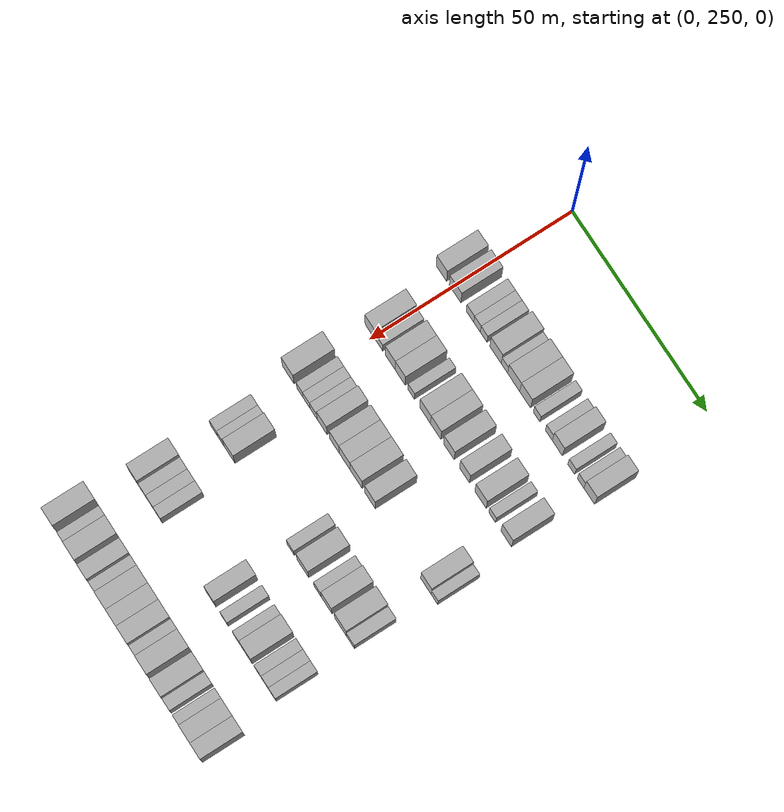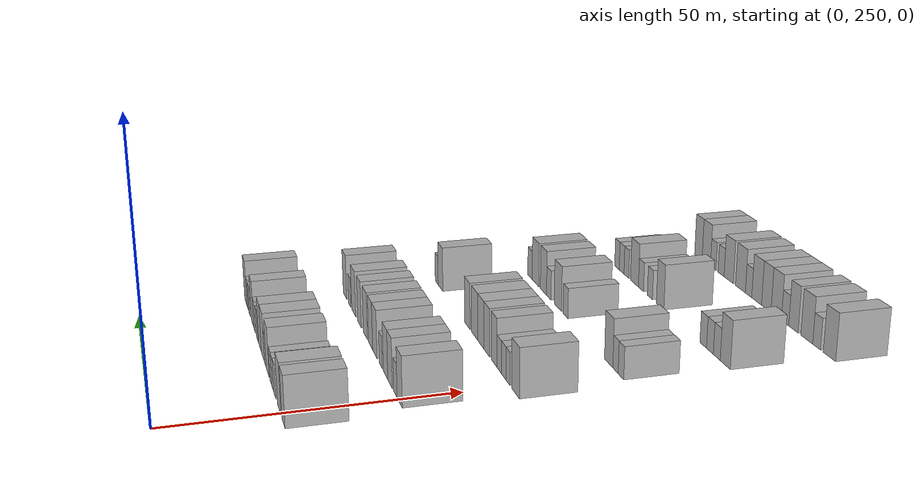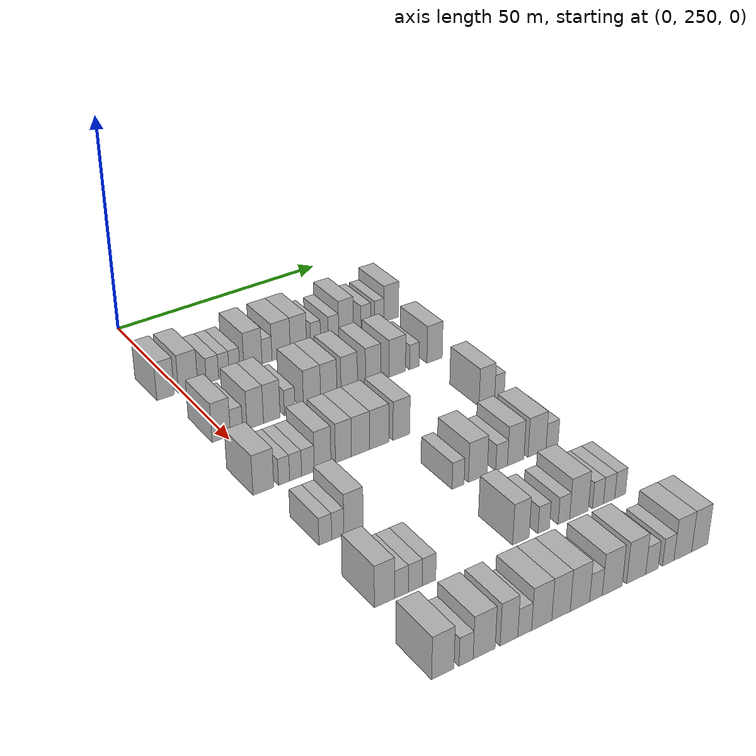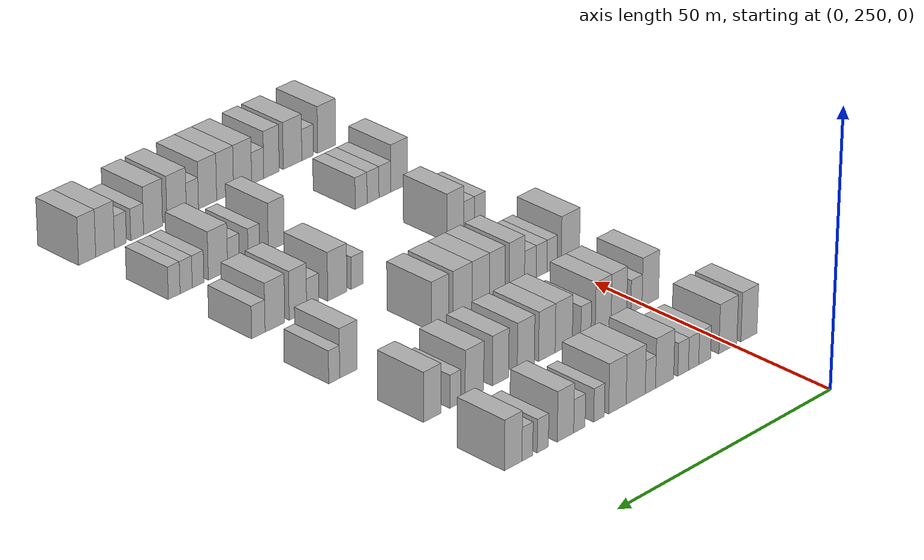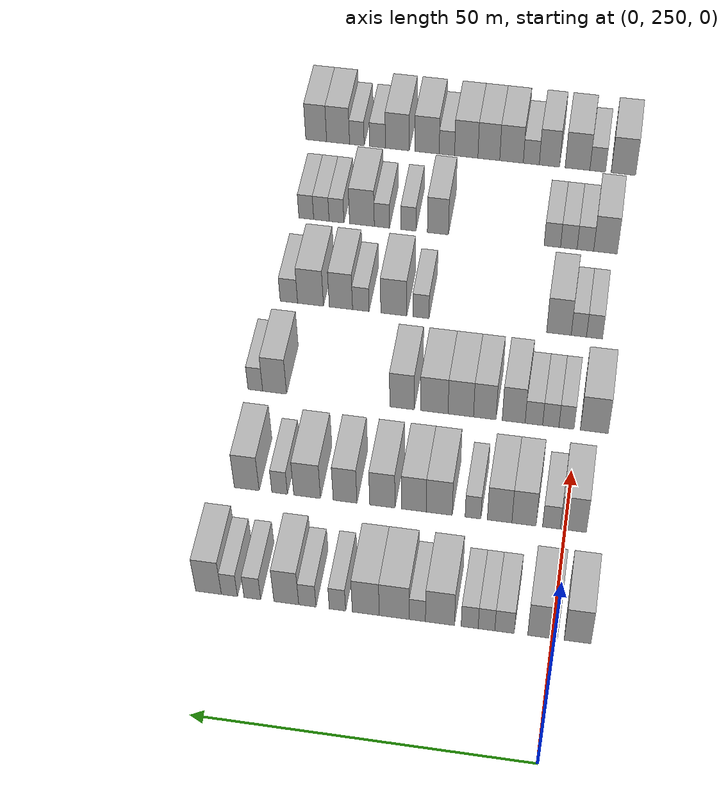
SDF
<sdf version="1.6">
 <world name="default">
  <model name="building_156">
   <static>1</static>
   <pose>25.0000 246.3121 0 0.000000 0.000000 0.000000</pose>
   <link name="link">
    <pose>0 0 4.50 0 0 0</pose>
    <collision name="collision"><geometry><box><size>10.0000 3.9395 9.0000</size></box></geometry></collision>
    <visual name="visual">
     <cast_shadows>0</cast_shadows>
     <geometry><box><size>10.0000 3.9395 9.0000</size></box></geometry>
     <material>
      <script>
       <uri>model://HANNAS_wall/materials/scripts</uri>
       <uri>model://HANNAS_wall/materials/textures</uri>
       <name>vrc/HANNAS_wall</name>
      </script>
     </material>
    </visual>
   </link>
  </model>
  <model name="building_157">
   <static>1</static>
   <pose>25.0000 251.4740 0 0.000000 0.000000 0.000000</pose>
   <link name="link">
    <pose>0 0 4.50 0 0 0</pose>
    <collision name="collision"><geometry><box><size>10.0000 4.3843 9.0000</size></box></geometry></collision>
    <visual name="visual">
     <cast_shadows>0</cast_shadows>
     <geometry><box><size>10.0000 4.3843 9.0000</size></box></geometry>
     <material>
      <script>
       <uri>model://HANNAS_wall/materials/scripts</uri>
       <uri>model://HANNAS_wall/materials/textures</uri>
       <name>vrc/HANNAS_wall</name>
      </script>
     </material>
    </visual>
   </link>
  </model>
  <model name="building_158">
   <static>1</static>
   <pose>25.0000 257.1023 0 0.000000 0.000000 0.000000</pose>
   <link name="link">
    <pose>0 0 3.00 0 0 0</pose>
    <collision name="collision"><geometry><box><size>10.0000 2.8722 6.0000</size></box></geometry></collision>
    <visual name="visual">
     <cast_shadows>0</cast_shadows>
     <geometry><box><size>10.0000 2.8722 6.0000</size></box></geometry>
     <material>
      <script>
       <uri>model://HANNAS_wall/materials/scripts</uri>
       <uri>model://HANNAS_wall/materials/textures</uri>
       <name>vrc/HANNAS_wall</name>
      </script>
     </material>
    </visual>
   </link>
  </model>
  <model name="building_159">
   <static>1</static>
   <pose>25.0000 259.7744 0 0.000000 0.000000 0.000000</pose>
   <link name="link">
    <pose>0 0 3.00 0 0 0</pose>
    <collision name="collision"><geometry><box><size>10.0000 2.4720 6.0000</size></box></geometry></collision>
    <visual name="visual">
     <cast_shadows>0</cast_shadows>
     <geometry><box><size>10.0000 2.4720 6.0000</size></box></geometry>
     <material>
      <script>
       <uri>model://HANNAS_wall/materials/scripts</uri>
       <uri>model://HANNAS_wall/materials/textures</uri>
       <name>vrc/HANNAS_wall</name>
      </script>
     </material>
    </visual>
   </link>
  </model>
  <model name="building_160">
   <static>1</static>
   <pose>25.0000 262.2749 0 0.000000 0.000000 0.000000</pose>
   <link name="link">
    <pose>0 0 3.00 0 0 0</pose>
    <collision name="collision"><geometry><box><size>10.0000 2.5291 6.0000</size></box></geometry></collision>
    <visual name="visual">
     <cast_shadows>0</cast_shadows>
     <geometry><box><size>10.0000 2.5291 6.0000</size></box></geometry>
     <material>
      <script>
       <uri>model://HANNAS_wall/materials/scripts</uri>
       <uri>model://HANNAS_wall/materials/textures</uri>
       <name>vrc/HANNAS_wall</name>
      </script>
     </material>
    </visual>
   </link>
  </model>
  <model name="building_161">
   <static>1</static>
   <pose>25.0000 266.7029 0 0.000000 0.000000 0.000000</pose>
   <link name="link">
    <pose>0 0 4.50 0 0 0</pose>
    <collision name="collision"><geometry><box><size>10.0000 4.3268 9.0000</size></box></geometry></collision>
    <visual name="visual">
     <cast_shadows>0</cast_shadows>
     <geometry><box><size>10.0000 4.3268 9.0000</size></box></geometry>
     <material>
      <script>
       <uri>model://HANNAS_wall/materials/scripts</uri>
       <uri>model://HANNAS_wall/materials/textures</uri>
       <name>vrc/HANNAS_wall</name>
      </script>
     </material>
    </visual>
   </link>
  </model>
  <model name="building_162">
   <static>1</static>
   <pose>25.0000 270.0692 0 0.000000 0.000000 0.000000</pose>
   <link name="link">
    <pose>0 0 3.00 0 0 0</pose>
    <collision name="collision"><geometry><box><size>10.0000 2.4058 6.0000</size></box></geometry></collision>
    <visual name="visual">
     <cast_shadows>0</cast_shadows>
     <geometry><box><size>10.0000 2.4058 6.0000</size></box></geometry>
     <material>
      <script>
       <uri>model://HANNAS_wall/materials/scripts</uri>
       <uri>model://HANNAS_wall/materials/textures</uri>
       <name>vrc/HANNAS_wall</name>
      </script>
     </material>
    </visual>
   </link>
  </model>
  <model name="building_163">
   <static>1</static>
   <pose>25.0000 273.5216 0 0.000000 0.000000 0.000000</pose>
   <link name="link">
    <pose>0 0 4.50 0 0 0</pose>
    <collision name="collision"><geometry><box><size>10.0000 4.4990 9.0000</size></box></geometry></collision>
    <visual name="visual">
     <cast_shadows>0</cast_shadows>
     <geometry><box><size>10.0000 4.4990 9.0000</size></box></geometry>
     <material>
      <script>
       <uri>model://HANNAS_wall/materials/scripts</uri>
       <uri>model://HANNAS_wall/materials/textures</uri>
       <name>vrc/HANNAS_wall</name>
      </script>
     </material>
    </visual>
   </link>
  </model>
  <model name="building_164">
   <static>1</static>
   <pose>25.0000 277.8006 0 0.000000 0.000000 0.000000</pose>
   <link name="link">
    <pose>0 0 4.50 0 0 0</pose>
    <collision name="collision"><geometry><box><size>10.0000 4.0591 9.0000</size></box></geometry></collision>
    <visual name="visual">
     <cast_shadows>0</cast_shadows>
     <geometry><box><size>10.0000 4.0591 9.0000</size></box></geometry>
     <material>
      <script>
       <uri>model://HANNAS_wall/materials/scripts</uri>
       <uri>model://HANNAS_wall/materials/textures</uri>
       <name>vrc/HANNAS_wall</name>
      </script>
     </material>
    </visual>
   </link>
  </model>
  <model name="building_165">
   <static>1</static>
   <pose>25.0000 282.0652 0 0.000000 0.000000 0.000000</pose>
   <link name="link">
    <pose>0 0 3.00 0 0 0</pose>
    <collision name="collision"><geometry><box><size>10.0000 2.4701 6.0000</size></box></geometry></collision>
    <visual name="visual">
     <cast_shadows>0</cast_shadows>
     <geometry><box><size>10.0000 2.4701 6.0000</size></box></geometry>
     <material>
      <script>
       <uri>model://HANNAS_wall/materials/scripts</uri>
       <uri>model://HANNAS_wall/materials/textures</uri>
       <name>vrc/HANNAS_wall</name>
      </script>
     </material>
    </visual>
   </link>
  </model>
  <model name="building_166">
   <static>1</static>
   <pose>25.0000 286.6066 0 0.000000 0.000000 0.000000</pose>
   <link name="link">
    <pose>0 0 3.00 0 0 0</pose>
    <collision name="collision"><geometry><box><size>10.0000 2.6126 6.0000</size></box></geometry></collision>
    <visual name="visual">
     <cast_shadows>0</cast_shadows>
     <geometry><box><size>10.0000 2.6126 6.0000</size></box></geometry>
     <material>
      <script>
       <uri>model://HANNAS_wall/materials/scripts</uri>
       <uri>model://HANNAS_wall/materials/textures</uri>
       <name>vrc/HANNAS_wall</name>
      </script>
     </material>
    </visual>
   </link>
  </model>
  <model name="building_167">
   <static>1</static>
   <pose>25.0000 289.7976 0 0.000000 0.000000 0.000000</pose>
   <link name="link">
    <pose>0 0 4.50 0 0 0</pose>
    <collision name="collision"><geometry><box><size>10.0000 3.7695 9.0000</size></box></geometry></collision>
    <visual name="visual">
     <cast_shadows>0</cast_shadows>
     <geometry><box><size>10.0000 3.7695 9.0000</size></box></geometry>
     <material>
      <script>
       <uri>model://HANNAS_wall/materials/scripts</uri>
       <uri>model://HANNAS_wall/materials/textures</uri>
       <name>vrc/HANNAS_wall</name>
      </script>
     </material>
    </visual>
   </link>
  </model>
  <model name="building_168">
   <static>1</static>
   <pose>25.0000 294.9523 0 0.000000 0.000000 0.000000</pose>
   <link name="link">
    <pose>0 0 3.00 0 0 0</pose>
    <collision name="collision"><geometry><box><size>10.0000 2.5399 6.0000</size></box></geometry></collision>
    <visual name="visual">
     <cast_shadows>0</cast_shadows>
     <geometry><box><size>10.0000 2.5399 6.0000</size></box></geometry>
     <material>
      <script>
       <uri>model://HANNAS_wall/materials/scripts</uri>
       <uri>model://HANNAS_wall/materials/textures</uri>
       <name>vrc/HANNAS_wall</name>
      </script>
     </material>
    </visual>
   </link>
  </model>
  <model name="building_169">
   <static>1</static>
   <pose>25.0000 298.4452 0 0.000000 0.000000 0.000000</pose>
   <link name="link">
    <pose>0 0 3.00 0 0 0</pose>
    <collision name="collision"><geometry><box><size>10.0000 2.4459 6.0000</size></box></geometry></collision>
    <visual name="visual">
     <cast_shadows>0</cast_shadows>
     <geometry><box><size>10.0000 2.4459 6.0000</size></box></geometry>
     <material>
      <script>
       <uri>model://HANNAS_wall/materials/scripts</uri>
       <uri>model://HANNAS_wall/materials/textures</uri>
       <name>vrc/HANNAS_wall</name>
      </script>
     </material>
    </visual>
   </link>
  </model>
  <model name="building_170">
   <static>1</static>
   <pose>25.0000 301.6287 0 0.000000 0.000000 0.000000</pose>
   <link name="link">
    <pose>0 0 4.50 0 0 0</pose>
    <collision name="collision"><geometry><box><size>10.0000 3.9210 9.0000</size></box></geometry></collision>
    <visual name="visual">
     <cast_shadows>0</cast_shadows>
     <geometry><box><size>10.0000 3.9210 9.0000</size></box></geometry>
     <material>
      <script>
       <uri>model://HANNAS_wall/materials/scripts</uri>
       <uri>model://HANNAS_wall/materials/textures</uri>
       <name>vrc/HANNAS_wall</name>
      </script>
     </material>
    </visual>
   </link>
  </model>
  <model name="building_321">
   <static>1</static>
   <pose>44.0000 248.7463 0 0.000000 0.000000 0.000000</pose>
   <link name="link">
    <pose>0 0 4.50 0 0 0</pose>
    <collision name="collision"><geometry><box><size>10.0000 4.0236 9.0000</size></box></geometry></collision>
    <visual name="visual">
     <cast_shadows>0</cast_shadows>
     <geometry><box><size>10.0000 4.0236 9.0000</size></box></geometry>
     <material>
      <script>
       <uri>model://HANNAS_wall/materials/scripts</uri>
       <uri>model://HANNAS_wall/materials/textures</uri>
       <name>vrc/HANNAS_wall</name>
      </script>
     </material>
    </visual>
   </link>
  </model>
  <model name="building_322">
   <static>1</static>
   <pose>44.0000 252.1188 0 0.000000 0.000000 0.000000</pose>
   <link name="link">
    <pose>0 0 3.00 0 0 0</pose>
    <collision name="collision"><geometry><box><size>10.0000 2.7215 6.0000</size></box></geometry></collision>
    <visual name="visual">
     <cast_shadows>0</cast_shadows>
     <geometry><box><size>10.0000 2.7215 6.0000</size></box></geometry>
     <material>
      <script>
       <uri>model://HANNAS_wall/materials/scripts</uri>
       <uri>model://HANNAS_wall/materials/textures</uri>
       <name>vrc/HANNAS_wall</name>
      </script>
     </material>
    </visual>
   </link>
  </model>
  <model name="building_323">
   <static>1</static>
   <pose>44.0000 256.3488 0 0.000000 0.000000 0.000000</pose>
   <link name="link">
    <pose>0 0 4.50 0 0 0</pose>
    <collision name="collision"><geometry><box><size>10.0000 3.7384 9.0000</size></box></geometry></collision>
    <visual name="visual">
     <cast_shadows>0</cast_shadows>
     <geometry><box><size>10.0000 3.7384 9.0000</size></box></geometry>
     <material>
      <script>
       <uri>model://HANNAS_wall/materials/scripts</uri>
       <uri>model://HANNAS_wall/materials/textures</uri>
       <name>vrc/HANNAS_wall</name>
      </script>
     </material>
    </visual>
   </link>
  </model>
  <model name="building_324">
   <static>1</static>
   <pose>44.0000 260.1199 0 0.000000 0.000000 0.000000</pose>
   <link name="link">
    <pose>0 0 4.50 0 0 0</pose>
    <collision name="collision"><geometry><box><size>10.0000 3.8038 9.0000</size></box></geometry></collision>
    <visual name="visual">
     <cast_shadows>0</cast_shadows>
     <geometry><box><size>10.0000 3.8038 9.0000</size></box></geometry>
     <material>
      <script>
       <uri>model://HANNAS_wall/materials/scripts</uri>
       <uri>model://HANNAS_wall/materials/textures</uri>
       <name>vrc/HANNAS_wall</name>
      </script>
     </material>
    </visual>
   </link>
  </model>
  <model name="building_325">
   <static>1</static>
   <pose>44.0000 264.2431 0 0.000000 0.000000 0.000000</pose>
   <link name="link">
    <pose>0 0 3.00 0 0 0</pose>
    <collision name="collision"><geometry><box><size>10.0000 2.4426 6.0000</size></box></geometry></collision>
    <visual name="visual">
     <cast_shadows>0</cast_shadows>
     <geometry><box><size>10.0000 2.4426 6.0000</size></box></geometry>
     <material>
      <script>
       <uri>model://HANNAS_wall/materials/scripts</uri>
       <uri>model://HANNAS_wall/materials/textures</uri>
       <name>vrc/HANNAS_wall</name>
      </script>
     </material>
    </visual>
   </link>
  </model>
  <model name="building_326">
   <static>1</static>
   <pose>44.0000 269.4884 0 0.000000 0.000000 0.000000</pose>
   <link name="link">
    <pose>0 0 4.50 0 0 0</pose>
    <collision name="collision"><geometry><box><size>10.0000 4.0479 9.0000</size></box></geometry></collision>
    <visual name="visual">
     <cast_shadows>0</cast_shadows>
     <geometry><box><size>10.0000 4.0479 9.0000</size></box></geometry>
     <material>
      <script>
       <uri>model://HANNAS_wall/materials/scripts</uri>
       <uri>model://HANNAS_wall/materials/textures</uri>
       <name>vrc/HANNAS_wall</name>
      </script>
     </material>
    </visual>
   </link>
  </model>
  <model name="building_327">
   <static>1</static>
   <pose>44.0000 273.4508 0 0.000000 0.000000 0.000000</pose>
   <link name="link">
    <pose>0 0 4.50 0 0 0</pose>
    <collision name="collision"><geometry><box><size>10.0000 3.8769 9.0000</size></box></geometry></collision>
    <visual name="visual">
     <cast_shadows>0</cast_shadows>
     <geometry><box><size>10.0000 3.8769 9.0000</size></box></geometry>
     <material>
      <script>
       <uri>model://HANNAS_wall/materials/scripts</uri>
       <uri>model://HANNAS_wall/materials/textures</uri>
       <name>vrc/HANNAS_wall</name>
      </script>
     </material>
    </visual>
   </link>
  </model>
  <model name="building_328">
   <static>1</static>
   <pose>44.0000 278.3739 0 0.000000 0.000000 0.000000</pose>
   <link name="link">
    <pose>0 0 4.50 0 0 0</pose>
    <collision name="collision"><geometry><box><size>10.0000 3.9691 9.0000</size></box></geometry></collision>
    <visual name="visual">
     <cast_shadows>0</cast_shadows>
     <geometry><box><size>10.0000 3.9691 9.0000</size></box></geometry>
     <material>
      <script>
       <uri>model://HANNAS_wall/materials/scripts</uri>
       <uri>model://HANNAS_wall/materials/textures</uri>
       <name>vrc/HANNAS_wall</name>
      </script>
     </material>
    </visual>
   </link>
  </model>
  <model name="building_329">
   <static>1</static>
   <pose>44.0000 284.2291 0 0.000000 0.000000 0.000000</pose>
   <link name="link">
    <pose>0 0 4.50 0 0 0</pose>
    <collision name="collision"><geometry><box><size>10.0000 3.7413 9.0000</size></box></geometry></collision>
    <visual name="visual">
     <cast_shadows>0</cast_shadows>
     <geometry><box><size>10.0000 3.7413 9.0000</size></box></geometry>
     <material>
      <script>
       <uri>model://HANNAS_wall/materials/scripts</uri>
       <uri>model://HANNAS_wall/materials/textures</uri>
       <name>vrc/HANNAS_wall</name>
      </script>
     </material>
    </visual>
   </link>
  </model>
  <model name="building_330">
   <static>1</static>
   <pose>44.0000 290.2135 0 0.000000 0.000000 0.000000</pose>
   <link name="link">
    <pose>0 0 4.50 0 0 0</pose>
    <collision name="collision"><geometry><box><size>10.0000 4.2275 9.0000</size></box></geometry></collision>
    <visual name="visual">
     <cast_shadows>0</cast_shadows>
     <geometry><box><size>10.0000 4.2275 9.0000</size></box></geometry>
     <material>
      <script>
       <uri>model://HANNAS_wall/materials/scripts</uri>
       <uri>model://HANNAS_wall/materials/textures</uri>
       <name>vrc/HANNAS_wall</name>
      </script>
     </material>
    </visual>
   </link>
  </model>
  <model name="building_331">
   <static>1</static>
   <pose>44.0000 294.5645 0 0.000000 0.000000 0.000000</pose>
   <link name="link">
    <pose>0 0 3.00 0 0 0</pose>
    <collision name="collision"><geometry><box><size>10.0000 2.4745 6.0000</size></box></geometry></collision>
    <visual name="visual">
     <cast_shadows>0</cast_shadows>
     <geometry><box><size>10.0000 2.4745 6.0000</size></box></geometry>
     <material>
      <script>
       <uri>model://HANNAS_wall/materials/scripts</uri>
       <uri>model://HANNAS_wall/materials/textures</uri>
       <name>vrc/HANNAS_wall</name>
      </script>
     </material>
    </visual>
   </link>
  </model>
  <model name="building_332">
   <static>1</static>
   <pose>44.0000 299.7746 0 0.000000 0.000000 0.000000</pose>
   <link name="link">
    <pose>0 0 4.50 0 0 0</pose>
    <collision name="collision"><geometry><box><size>10.0000 3.9457 9.0000</size></box></geometry></collision>
    <visual name="visual">
     <cast_shadows>0</cast_shadows>
     <geometry><box><size>10.0000 3.9457 9.0000</size></box></geometry>
     <material>
      <script>
       <uri>model://HANNAS_wall/materials/scripts</uri>
       <uri>model://HANNAS_wall/materials/textures</uri>
       <name>vrc/HANNAS_wall</name>
      </script>
     </material>
    </visual>
   </link>
  </model>
  <model name="building_487">
   <static>1</static>
   <pose>63.0000 247.1983 0 0.000000 0.000000 0.000000</pose>
   <link name="link">
    <pose>0 0 4.50 0 0 0</pose>
    <collision name="collision"><geometry><box><size>10.0000 4.4640 9.0000</size></box></geometry></collision>
    <visual name="visual">
     <cast_shadows>0</cast_shadows>
     <geometry><box><size>10.0000 4.4640 9.0000</size></box></geometry>
     <material>
      <script>
       <uri>model://HANNAS_wall/materials/scripts</uri>
       <uri>model://HANNAS_wall/materials/textures</uri>
       <name>vrc/HANNAS_wall</name>
      </script>
     </material>
    </visual>
   </link>
  </model>
  <model name="building_488">
   <static>1</static>
   <pose>63.0000 251.6457 0 0.000000 0.000000 0.000000</pose>
   <link name="link">
    <pose>0 0 3.00 0 0 0</pose>
    <collision name="collision"><geometry><box><size>10.0000 2.4308 6.0000</size></box></geometry></collision>
    <visual name="visual">
     <cast_shadows>0</cast_shadows>
     <geometry><box><size>10.0000 2.4308 6.0000</size></box></geometry>
     <material>
      <script>
       <uri>model://HANNAS_wall/materials/scripts</uri>
       <uri>model://HANNAS_wall/materials/textures</uri>
       <name>vrc/HANNAS_wall</name>
      </script>
     </material>
    </visual>
   </link>
  </model>
  <model name="building_489">
   <static>1</static>
   <pose>63.0000 254.1675 0 0.000000 0.000000 0.000000</pose>
   <link name="link">
    <pose>0 0 3.00 0 0 0</pose>
    <collision name="collision"><geometry><box><size>10.0000 2.6129 6.0000</size></box></geometry></collision>
    <visual name="visual">
     <cast_shadows>0</cast_shadows>
     <geometry><box><size>10.0000 2.6129 6.0000</size></box></geometry>
     <material>
      <script>
       <uri>model://HANNAS_wall/materials/scripts</uri>
       <uri>model://HANNAS_wall/materials/textures</uri>
       <name>vrc/HANNAS_wall</name>
      </script>
     </material>
    </visual>
   </link>
  </model>
  <model name="building_490">
   <static>1</static>
   <pose>63.0000 256.8831 0 0.000000 0.000000 0.000000</pose>
   <link name="link">
    <pose>0 0 3.00 0 0 0</pose>
    <collision name="collision"><geometry><box><size>10.0000 2.8184 6.0000</size></box></geometry></collision>
    <visual name="visual">
     <cast_shadows>0</cast_shadows>
     <geometry><box><size>10.0000 2.8184 6.0000</size></box></geometry>
     <material>
      <script>
       <uri>model://HANNAS_wall/materials/scripts</uri>
       <uri>model://HANNAS_wall/materials/textures</uri>
       <name>vrc/HANNAS_wall</name>
      </script>
     </material>
    </visual>
   </link>
  </model>
  <model name="building_491">
   <static>1</static>
   <pose>63.0000 260.1398 0 0.000000 0.000000 0.000000</pose>
   <link name="link">
    <pose>0 0 4.50 0 0 0</pose>
    <collision name="collision"><geometry><box><size>10.0000 3.6950 9.0000</size></box></geometry></collision>
    <visual name="visual">
     <cast_shadows>0</cast_shadows>
     <geometry><box><size>10.0000 3.6950 9.0000</size></box></geometry>
     <material>
      <script>
       <uri>model://HANNAS_wall/materials/scripts</uri>
       <uri>model://HANNAS_wall/materials/textures</uri>
       <name>vrc/HANNAS_wall</name>
      </script>
     </material>
    </visual>
   </link>
  </model>
  <model name="building_492">
   <static>1</static>
   <pose>63.0000 264.8047 0 0.000000 0.000000 0.000000</pose>
   <link name="link">
    <pose>0 0 4.50 0 0 0</pose>
    <collision name="collision"><geometry><box><size>10.0000 3.6348 9.0000</size></box></geometry></collision>
    <visual name="visual">
     <cast_shadows>0</cast_shadows>
     <geometry><box><size>10.0000 3.6348 9.0000</size></box></geometry>
     <material>
      <script>
       <uri>model://HANNAS_wall/materials/scripts</uri>
       <uri>model://HANNAS_wall/materials/textures</uri>
       <name>vrc/HANNAS_wall</name>
      </script>
     </material>
    </visual>
   </link>
  </model>
  <model name="building_493">
   <static>1</static>
   <pose>63.0000 268.6848 0 0.000000 0.000000 0.000000</pose>
   <link name="link">
    <pose>0 0 4.50 0 0 0</pose>
    <collision name="collision"><geometry><box><size>10.0000 4.1255 9.0000</size></box></geometry></collision>
    <visual name="visual">
     <cast_shadows>0</cast_shadows>
     <geometry><box><size>10.0000 4.1255 9.0000</size></box></geometry>
     <material>
      <script>
       <uri>model://HANNAS_wall/materials/scripts</uri>
       <uri>model://HANNAS_wall/materials/textures</uri>
       <name>vrc/HANNAS_wall</name>
      </script>
     </material>
    </visual>
   </link>
  </model>
  <model name="building_494">
   <static>1</static>
   <pose>63.0000 272.9878 0 0.000000 0.000000 0.000000</pose>
   <link name="link">
    <pose>0 0 4.50 0 0 0</pose>
    <collision name="collision"><geometry><box><size>10.0000 4.4803 9.0000</size></box></geometry></collision>
    <visual name="visual">
     <cast_shadows>0</cast_shadows>
     <geometry><box><size>10.0000 4.4803 9.0000</size></box></geometry>
     <material>
      <script>
       <uri>model://HANNAS_wall/materials/scripts</uri>
       <uri>model://HANNAS_wall/materials/textures</uri>
       <name>vrc/HANNAS_wall</name>
      </script>
     </material>
    </visual>
   </link>
  </model>
  <model name="building_495">
   <static>1</static>
   <pose>63.0000 278.2209 0 0.000000 0.000000 0.000000</pose>
   <link name="link">
    <pose>0 0 4.50 0 0 0</pose>
    <collision name="collision"><geometry><box><size>10.0000 3.9860 9.0000</size></box></geometry></collision>
    <visual name="visual">
     <cast_shadows>0</cast_shadows>
     <geometry><box><size>10.0000 3.9860 9.0000</size></box></geometry>
     <material>
      <script>
       <uri>model://HANNAS_wall/materials/scripts</uri>
       <uri>model://HANNAS_wall/materials/textures</uri>
       <name>vrc/HANNAS_wall</name>
      </script>
     </material>
    </visual>
   </link>
  </model>
  <model name="building_496">
   <static>1</static>
   <pose>63.0000 299.1376 0 0.000000 0.000000 0.000000</pose>
   <link name="link">
    <pose>0 0 4.50 0 0 0</pose>
    <collision name="collision"><geometry><box><size>10.0000 3.9491 9.0000</size></box></geometry></collision>
    <visual name="visual">
     <cast_shadows>0</cast_shadows>
     <geometry><box><size>10.0000 3.9491 9.0000</size></box></geometry>
     <material>
      <script>
       <uri>model://HANNAS_wall/materials/scripts</uri>
       <uri>model://HANNAS_wall/materials/textures</uri>
       <name>vrc/HANNAS_wall</name>
      </script>
     </material>
    </visual>
   </link>
  </model>
  <model name="building_497">
   <static>1</static>
   <pose>63.0000 302.3287 0 0.000000 0.000000 0.000000</pose>
   <link name="link">
    <pose>0 0 3.00 0 0 0</pose>
    <collision name="collision"><geometry><box><size>10.0000 2.4332 6.0000</size></box></geometry></collision>
    <visual name="visual">
     <cast_shadows>0</cast_shadows>
     <geometry><box><size>10.0000 2.4332 6.0000</size></box></geometry>
     <material>
      <script>
       <uri>model://HANNAS_wall/materials/scripts</uri>
       <uri>model://HANNAS_wall/materials/textures</uri>
       <name>vrc/HANNAS_wall</name>
      </script>
     </material>
    </visual>
   </link>
  </model>
  <model name="building_652">
   <static>1</static>
   <pose>82.0000 248.8325 0 0.000000 0.000000 0.000000</pose>
   <link name="link">
    <pose>0 0 3.00 0 0 0</pose>
    <collision name="collision"><geometry><box><size>10.0000 2.6642 6.0000</size></box></geometry></collision>
    <visual name="visual">
     <cast_shadows>0</cast_shadows>
     <geometry><box><size>10.0000 2.6642 6.0000</size></box></geometry>
     <material>
      <script>
       <uri>model://HANNAS_wall/materials/scripts</uri>
       <uri>model://HANNAS_wall/materials/textures</uri>
       <name>vrc/HANNAS_wall</name>
      </script>
     </material>
    </visual>
   </link>
  </model>
  <model name="building_653">
   <static>1</static>
   <pose>82.0000 251.4354 0 0.000000 0.000000 0.000000</pose>
   <link name="link">
    <pose>0 0 3.00 0 0 0</pose>
    <collision name="collision"><geometry><box><size>10.0000 2.5418 6.0000</size></box></geometry></collision>
    <visual name="visual">
     <cast_shadows>0</cast_shadows>
     <geometry><box><size>10.0000 2.5418 6.0000</size></box></geometry>
     <material>
      <script>
       <uri>model://HANNAS_wall/materials/scripts</uri>
       <uri>model://HANNAS_wall/materials/textures</uri>
       <name>vrc/HANNAS_wall</name>
      </script>
     </material>
    </visual>
   </link>
  </model>
  <model name="building_654">
   <static>1</static>
   <pose>82.0000 254.7620 0 0.000000 0.000000 0.000000</pose>
   <link name="link">
    <pose>0 0 4.50 0 0 0</pose>
    <collision name="collision"><geometry><box><size>10.0000 4.1115 9.0000</size></box></geometry></collision>
    <visual name="visual">
     <cast_shadows>0</cast_shadows>
     <geometry><box><size>10.0000 4.1115 9.0000</size></box></geometry>
     <material>
      <script>
       <uri>model://HANNAS_wall/materials/scripts</uri>
       <uri>model://HANNAS_wall/materials/textures</uri>
       <name>vrc/HANNAS_wall</name>
      </script>
     </material>
    </visual>
   </link>
  </model>
  <model name="building_655">
   <static>1</static>
   <pose>82.0000 277.9632 0 0.000000 0.000000 0.000000</pose>
   <link name="link">
    <pose>0 0 3.00 0 0 0</pose>
    <collision name="collision"><geometry><box><size>10.0000 2.7636 6.0000</size></box></geometry></collision>
    <visual name="visual">
     <cast_shadows>0</cast_shadows>
     <geometry><box><size>10.0000 2.7636 6.0000</size></box></geometry>
     <material>
      <script>
       <uri>model://HANNAS_wall/materials/scripts</uri>
       <uri>model://HANNAS_wall/materials/textures</uri>
       <name>vrc/HANNAS_wall</name>
      </script>
     </material>
    </visual>
   </link>
  </model>
  <model name="building_656">
   <static>1</static>
   <pose>82.0000 282.5556 0 0.000000 0.000000 0.000000</pose>
   <link name="link">
    <pose>0 0 4.50 0 0 0</pose>
    <collision name="collision"><geometry><box><size>10.0000 4.4211 9.0000</size></box></geometry></collision>
    <visual name="visual">
     <cast_shadows>0</cast_shadows>
     <geometry><box><size>10.0000 4.4211 9.0000</size></box></geometry>
     <material>
      <script>
       <uri>model://HANNAS_wall/materials/scripts</uri>
       <uri>model://HANNAS_wall/materials/textures</uri>
       <name>vrc/HANNAS_wall</name>
      </script>
     </material>
    </visual>
   </link>
  </model>
  <model name="building_657">
   <static>1</static>
   <pose>82.0000 288.1739 0 0.000000 0.000000 0.000000</pose>
   <link name="link">
    <pose>0 0 3.00 0 0 0</pose>
    <collision name="collision"><geometry><box><size>10.0000 2.8155 6.0000</size></box></geometry></collision>
    <visual name="visual">
     <cast_shadows>0</cast_shadows>
     <geometry><box><size>10.0000 2.8155 6.0000</size></box></geometry>
     <material>
      <script>
       <uri>model://HANNAS_wall/materials/scripts</uri>
       <uri>model://HANNAS_wall/materials/textures</uri>
       <name>vrc/HANNAS_wall</name>
      </script>
     </material>
    </visual>
   </link>
  </model>
  <model name="building_658">
   <static>1</static>
   <pose>82.0000 291.5638 0 0.000000 0.000000 0.000000</pose>
   <link name="link">
    <pose>0 0 4.50 0 0 0</pose>
    <collision name="collision"><geometry><box><size>10.0000 3.9643 9.0000</size></box></geometry></collision>
    <visual name="visual">
     <cast_shadows>0</cast_shadows>
     <geometry><box><size>10.0000 3.9643 9.0000</size></box></geometry>
     <material>
      <script>
       <uri>model://HANNAS_wall/materials/scripts</uri>
       <uri>model://HANNAS_wall/materials/textures</uri>
       <name>vrc/HANNAS_wall</name>
      </script>
     </material>
    </visual>
   </link>
  </model>
  <model name="building_659">
   <static>1</static>
   <pose>82.0000 296.7638 0 0.000000 0.000000 0.000000</pose>
   <link name="link">
    <pose>0 0 4.50 0 0 0</pose>
    <collision name="collision"><geometry><box><size>10.0000 4.4357 9.0000</size></box></geometry></collision>
    <visual name="visual">
     <cast_shadows>0</cast_shadows>
     <geometry><box><size>10.0000 4.4357 9.0000</size></box></geometry>
     <material>
      <script>
       <uri>model://HANNAS_wall/materials/scripts</uri>
       <uri>model://HANNAS_wall/materials/textures</uri>
       <name>vrc/HANNAS_wall</name>
      </script>
     </material>
    </visual>
   </link>
  </model>
  <model name="building_660">
   <static>1</static>
   <pose>82.0000 300.4737 0 0.000000 0.000000 0.000000</pose>
   <link name="link">
    <pose>0 0 3.00 0 0 0</pose>
    <collision name="collision"><geometry><box><size>10.0000 2.9841 6.0000</size></box></geometry></collision>
    <visual name="visual">
     <cast_shadows>0</cast_shadows>
     <geometry><box><size>10.0000 2.9841 6.0000</size></box></geometry>
     <material>
      <script>
       <uri>model://HANNAS_wall/materials/scripts</uri>
       <uri>model://HANNAS_wall/materials/textures</uri>
       <name>vrc/HANNAS_wall</name>
      </script>
     </material>
    </visual>
   </link>
  </model>
  <model name="building_820">
   <static>1</static>
   <pose>101.0000 248.6150 0 0.000000 0.000000 0.000000</pose>
   <link name="link">
    <pose>0 0 4.50 0 0 0</pose>
    <collision name="collision"><geometry><box><size>10.0000 4.0707 9.0000</size></box></geometry></collision>
    <visual name="visual">
     <cast_shadows>0</cast_shadows>
     <geometry><box><size>10.0000 4.0707 9.0000</size></box></geometry>
     <material>
      <script>
       <uri>model://HANNAS_wall/materials/scripts</uri>
       <uri>model://HANNAS_wall/materials/textures</uri>
       <name>vrc/HANNAS_wall</name>
      </script>
     </material>
    </visual>
   </link>
  </model>
  <model name="building_821">
   <static>1</static>
   <pose>101.0000 252.0802 0 0.000000 0.000000 0.000000</pose>
   <link name="link">
    <pose>0 0 3.00 0 0 0</pose>
    <collision name="collision"><geometry><box><size>10.0000 2.8596 6.0000</size></box></geometry></collision>
    <visual name="visual">
     <cast_shadows>0</cast_shadows>
     <geometry><box><size>10.0000 2.8596 6.0000</size></box></geometry>
     <material>
      <script>
       <uri>model://HANNAS_wall/materials/scripts</uri>
       <uri>model://HANNAS_wall/materials/textures</uri>
       <name>vrc/HANNAS_wall</name>
      </script>
     </material>
    </visual>
   </link>
  </model>
  <model name="building_822">
   <static>1</static>
   <pose>101.0000 254.9421 0 0.000000 0.000000 0.000000</pose>
   <link name="link">
    <pose>0 0 3.00 0 0 0</pose>
    <collision name="collision"><geometry><box><size>10.0000 2.8643 6.0000</size></box></geometry></collision>
    <visual name="visual">
     <cast_shadows>0</cast_shadows>
     <geometry><box><size>10.0000 2.8643 6.0000</size></box></geometry>
     <material>
      <script>
       <uri>model://HANNAS_wall/materials/scripts</uri>
       <uri>model://HANNAS_wall/materials/textures</uri>
       <name>vrc/HANNAS_wall</name>
      </script>
     </material>
    </visual>
   </link>
  </model>
  <model name="building_823">
   <static>1</static>
   <pose>101.0000 257.8016 0 0.000000 0.000000 0.000000</pose>
   <link name="link">
    <pose>0 0 3.00 0 0 0</pose>
    <collision name="collision"><geometry><box><size>10.0000 2.8547 6.0000</size></box></geometry></collision>
    <visual name="visual">
     <cast_shadows>0</cast_shadows>
     <geometry><box><size>10.0000 2.8547 6.0000</size></box></geometry>
     <material>
      <script>
       <uri>model://HANNAS_wall/materials/scripts</uri>
       <uri>model://HANNAS_wall/materials/textures</uri>
       <name>vrc/HANNAS_wall</name>
      </script>
     </material>
    </visual>
   </link>
  </model>
  <model name="building_824">
   <static>1</static>
   <pose>101.0000 277.7857 0 0.000000 0.000000 0.000000</pose>
   <link name="link">
    <pose>0 0 4.50 0 0 0</pose>
    <collision name="collision"><geometry><box><size>10.0000 3.7045 9.0000</size></box></geometry></collision>
    <visual name="visual">
     <cast_shadows>0</cast_shadows>
     <geometry><box><size>10.0000 3.7045 9.0000</size></box></geometry>
     <material>
      <script>
       <uri>model://HANNAS_wall/materials/scripts</uri>
       <uri>model://HANNAS_wall/materials/textures</uri>
       <name>vrc/HANNAS_wall</name>
      </script>
     </material>
    </visual>
   </link>
  </model>
  <model name="building_825">
   <static>1</static>
   <pose>101.0000 282.9665 0 0.000000 0.000000 0.000000</pose>
   <link name="link">
    <pose>0 0 3.00 0 0 0</pose>
    <collision name="collision"><geometry><box><size>10.0000 2.6570 6.0000</size></box></geometry></collision>
    <visual name="visual">
     <cast_shadows>0</cast_shadows>
     <geometry><box><size>10.0000 2.6570 6.0000</size></box></geometry>
     <material>
      <script>
       <uri>model://HANNAS_wall/materials/scripts</uri>
       <uri>model://HANNAS_wall/materials/textures</uri>
       <name>vrc/HANNAS_wall</name>
      </script>
     </material>
    </visual>
   </link>
  </model>
  <model name="building_826">
   <static>1</static>
   <pose>101.0000 287.6430 0 0.000000 0.000000 0.000000</pose>
   <link name="link">
    <pose>0 0 3.00 0 0 0</pose>
    <collision name="collision"><geometry><box><size>10.0000 2.6960 6.0000</size></box></geometry></collision>
    <visual name="visual">
     <cast_shadows>0</cast_shadows>
     <geometry><box><size>10.0000 2.6960 6.0000</size></box></geometry>
     <material>
      <script>
       <uri>model://HANNAS_wall/materials/scripts</uri>
       <uri>model://HANNAS_wall/materials/textures</uri>
       <name>vrc/HANNAS_wall</name>
      </script>
     </material>
    </visual>
   </link>
  </model>
  <model name="building_827">
   <static>1</static>
   <pose>101.0000 291.1832 0 0.000000 0.000000 0.000000</pose>
   <link name="link">
    <pose>0 0 4.50 0 0 0</pose>
    <collision name="collision"><geometry><box><size>10.0000 4.3845 9.0000</size></box></geometry></collision>
    <visual name="visual">
     <cast_shadows>0</cast_shadows>
     <geometry><box><size>10.0000 4.3845 9.0000</size></box></geometry>
     <material>
      <script>
       <uri>model://HANNAS_wall/materials/scripts</uri>
       <uri>model://HANNAS_wall/materials/textures</uri>
       <name>vrc/HANNAS_wall</name>
      </script>
     </material>
    </visual>
   </link>
  </model>
  <model name="building_828">
   <static>1</static>
   <pose>101.0000 295.6929 0 0.000000 0.000000 0.000000</pose>
   <link name="link">
    <pose>0 0 3.00 0 0 0</pose>
    <collision name="collision"><geometry><box><size>10.0000 2.6349 6.0000</size></box></geometry></collision>
    <visual name="visual">
     <cast_shadows>0</cast_shadows>
     <geometry><box><size>10.0000 2.6349 6.0000</size></box></geometry>
     <material>
      <script>
       <uri>model://HANNAS_wall/materials/scripts</uri>
       <uri>model://HANNAS_wall/materials/textures</uri>
       <name>vrc/HANNAS_wall</name>
      </script>
     </material>
    </visual>
   </link>
  </model>
  <model name="building_829">
   <static>1</static>
   <pose>101.0000 298.3824 0 0.000000 0.000000 0.000000</pose>
   <link name="link">
    <pose>0 0 3.00 0 0 0</pose>
    <collision name="collision"><geometry><box><size>10.0000 2.7442 6.0000</size></box></geometry></collision>
    <visual name="visual">
     <cast_shadows>0</cast_shadows>
     <geometry><box><size>10.0000 2.7442 6.0000</size></box></geometry>
     <material>
      <script>
       <uri>model://HANNAS_wall/materials/scripts</uri>
       <uri>model://HANNAS_wall/materials/textures</uri>
       <name>vrc/HANNAS_wall</name>
      </script>
     </material>
    </visual>
   </link>
  </model>
  <model name="building_830">
   <static>1</static>
   <pose>101.0000 301.0678 0 0.000000 0.000000 0.000000</pose>
   <link name="link">
    <pose>0 0 3.00 0 0 0</pose>
    <collision name="collision"><geometry><box><size>10.0000 2.6266 6.0000</size></box></geometry></collision>
    <visual name="visual">
     <cast_shadows>0</cast_shadows>
     <geometry><box><size>10.0000 2.6266 6.0000</size></box></geometry>
     <material>
      <script>
       <uri>model://HANNAS_wall/materials/scripts</uri>
       <uri>model://HANNAS_wall/materials/textures</uri>
       <name>vrc/HANNAS_wall</name>
      </script>
     </material>
    </visual>
   </link>
  </model>
  <model name="building_1001">
   <static>1</static>
   <pose>120.0000 246.9979 0 0.000000 0.000000 0.000000</pose>
   <link name="link">
    <pose>0 0 4.50 0 0 0</pose>
    <collision name="collision"><geometry><box><size>10.0000 4.3757 9.0000</size></box></geometry></collision>
    <visual name="visual">
     <cast_shadows>0</cast_shadows>
     <geometry><box><size>10.0000 4.3757 9.0000</size></box></geometry>
     <material>
      <script>
       <uri>model://HANNAS_wall/materials/scripts</uri>
       <uri>model://HANNAS_wall/materials/textures</uri>
       <name>vrc/HANNAS_wall</name>
      </script>
     </material>
    </visual>
   </link>
  </model>
  <model name="building_1002">
   <static>1</static>
   <pose>120.0000 251.5917 0 0.000000 0.000000 0.000000</pose>
   <link name="link">
    <pose>0 0 3.00 0 0 0</pose>
    <collision name="collision"><geometry><box><size>10.0000 2.8118 6.0000</size></box></geometry></collision>
    <visual name="visual">
     <cast_shadows>0</cast_shadows>
     <geometry><box><size>10.0000 2.8118 6.0000</size></box></geometry>
     <material>
      <script>
       <uri>model://HANNAS_wall/materials/scripts</uri>
       <uri>model://HANNAS_wall/materials/textures</uri>
       <name>vrc/HANNAS_wall</name>
      </script>
     </material>
    </visual>
   </link>
  </model>
  <model name="building_1003">
   <static>1</static>
   <pose>120.0000 255.2251 0 0.000000 0.000000 0.000000</pose>
   <link name="link">
    <pose>0 0 4.50 0 0 0</pose>
    <collision name="collision"><geometry><box><size>10.0000 4.4550 9.0000</size></box></geometry></collision>
    <visual name="visual">
     <cast_shadows>0</cast_shadows>
     <geometry><box><size>10.0000 4.4550 9.0000</size></box></geometry>
     <material>
      <script>
       <uri>model://HANNAS_wall/materials/scripts</uri>
       <uri>model://HANNAS_wall/materials/textures</uri>
       <name>vrc/HANNAS_wall</name>
      </script>
     </material>
    </visual>
   </link>
  </model>
  <model name="building_1004">
   <static>1</static>
   <pose>120.0000 260.2782 0 0.000000 0.000000 0.000000</pose>
   <link name="link">
    <pose>0 0 4.50 0 0 0</pose>
    <collision name="collision"><geometry><box><size>10.0000 3.6513 9.0000</size></box></geometry></collision>
    <visual name="visual">
     <cast_shadows>0</cast_shadows>
     <geometry><box><size>10.0000 3.6513 9.0000</size></box></geometry>
     <material>
      <script>
       <uri>model://HANNAS_wall/materials/scripts</uri>
       <uri>model://HANNAS_wall/materials/textures</uri>
       <name>vrc/HANNAS_wall</name>
      </script>
     </material>
    </visual>
   </link>
  </model>
  <model name="building_1005">
   <static>1</static>
   <pose>120.0000 263.5466 0 0.000000 0.000000 0.000000</pose>
   <link name="link">
    <pose>0 0 3.00 0 0 0</pose>
    <collision name="collision"><geometry><box><size>10.0000 2.8855 6.0000</size></box></geometry></collision>
    <visual name="visual">
     <cast_shadows>0</cast_shadows>
     <geometry><box><size>10.0000 2.8855 6.0000</size></box></geometry>
     <material>
      <script>
       <uri>model://HANNAS_wall/materials/scripts</uri>
       <uri>model://HANNAS_wall/materials/textures</uri>
       <name>vrc/HANNAS_wall</name>
      </script>
     </material>
    </visual>
   </link>
  </model>
  <model name="building_1006">
   <static>1</static>
   <pose>120.0000 267.1217 0 0.000000 0.000000 0.000000</pose>
   <link name="link">
    <pose>0 0 4.50 0 0 0</pose>
    <collision name="collision"><geometry><box><size>10.0000 4.2647 9.0000</size></box></geometry></collision>
    <visual name="visual">
     <cast_shadows>0</cast_shadows>
     <geometry><box><size>10.0000 4.2647 9.0000</size></box></geometry>
     <material>
      <script>
       <uri>model://HANNAS_wall/materials/scripts</uri>
       <uri>model://HANNAS_wall/materials/textures</uri>
       <name>vrc/HANNAS_wall</name>
      </script>
     </material>
    </visual>
   </link>
  </model>
  <model name="building_1007">
   <static>1</static>
   <pose>120.0000 271.2325 0 0.000000 0.000000 0.000000</pose>
   <link name="link">
    <pose>0 0 4.50 0 0 0</pose>
    <collision name="collision"><geometry><box><size>10.0000 3.9568 9.0000</size></box></geometry></collision>
    <visual name="visual">
     <cast_shadows>0</cast_shadows>
     <geometry><box><size>10.0000 3.9568 9.0000</size></box></geometry>
     <material>
      <script>
       <uri>model://HANNAS_wall/materials/scripts</uri>
       <uri>model://HANNAS_wall/materials/textures</uri>
       <name>vrc/HANNAS_wall</name>
      </script>
     </material>
    </visual>
   </link>
  </model>
  <model name="building_1008">
   <static>1</static>
   <pose>120.0000 275.3262 0 0.000000 0.000000 0.000000</pose>
   <link name="link">
    <pose>0 0 4.50 0 0 0</pose>
    <collision name="collision"><geometry><box><size>10.0000 4.2307 9.0000</size></box></geometry></collision>
    <visual name="visual">
     <cast_shadows>0</cast_shadows>
     <geometry><box><size>10.0000 4.2307 9.0000</size></box></geometry>
     <material>
      <script>
       <uri>model://HANNAS_wall/materials/scripts</uri>
       <uri>model://HANNAS_wall/materials/textures</uri>
       <name>vrc/HANNAS_wall</name>
      </script>
     </material>
    </visual>
   </link>
  </model>
  <model name="building_1009">
   <static>1</static>
   <pose>120.0000 278.8416 0 0.000000 0.000000 0.000000</pose>
   <link name="link">
    <pose>0 0 3.00 0 0 0</pose>
    <collision name="collision"><geometry><box><size>10.0000 2.8001 6.0000</size></box></geometry></collision>
    <visual name="visual">
     <cast_shadows>0</cast_shadows>
     <geometry><box><size>10.0000 2.8001 6.0000</size></box></geometry>
     <material>
      <script>
       <uri>model://HANNAS_wall/materials/scripts</uri>
       <uri>model://HANNAS_wall/materials/textures</uri>
       <name>vrc/HANNAS_wall</name>
      </script>
     </material>
    </visual>
   </link>
  </model>
  <model name="building_1010">
   <static>1</static>
   <pose>120.0000 282.4750 0 0.000000 0.000000 0.000000</pose>
   <link name="link">
    <pose>0 0 4.50 0 0 0</pose>
    <collision name="collision"><geometry><box><size>10.0000 4.4667 9.0000</size></box></geometry></collision>
    <visual name="visual">
     <cast_shadows>0</cast_shadows>
     <geometry><box><size>10.0000 4.4667 9.0000</size></box></geometry>
     <material>
      <script>
       <uri>model://HANNAS_wall/materials/scripts</uri>
       <uri>model://HANNAS_wall/materials/textures</uri>
       <name>vrc/HANNAS_wall</name>
      </script>
     </material>
    </visual>
   </link>
  </model>
  <model name="building_1011">
   <static>1</static>
   <pose>120.0000 287.8870 0 0.000000 0.000000 0.000000</pose>
   <link name="link">
    <pose>0 0 4.50 0 0 0</pose>
    <collision name="collision"><geometry><box><size>10.0000 4.3572 9.0000</size></box></geometry></collision>
    <visual name="visual">
     <cast_shadows>0</cast_shadows>
     <geometry><box><size>10.0000 4.3572 9.0000</size></box></geometry>
     <material>
      <script>
       <uri>model://HANNAS_wall/materials/scripts</uri>
       <uri>model://HANNAS_wall/materials/textures</uri>
       <name>vrc/HANNAS_wall</name>
      </script>
     </material>
    </visual>
   </link>
  </model>
  <model name="building_1012">
   <static>1</static>
   <pose>120.0000 291.5186 0 0.000000 0.000000 0.000000</pose>
   <link name="link">
    <pose>0 0 3.00 0 0 0</pose>
    <collision name="collision"><geometry><box><size>10.0000 2.9061 6.0000</size></box></geometry></collision>
    <visual name="visual">
     <cast_shadows>0</cast_shadows>
     <geometry><box><size>10.0000 2.9061 6.0000</size></box></geometry>
     <material>
      <script>
       <uri>model://HANNAS_wall/materials/scripts</uri>
       <uri>model://HANNAS_wall/materials/textures</uri>
       <name>vrc/HANNAS_wall</name>
      </script>
     </material>
    </visual>
   </link>
  </model>
  <model name="building_1013">
   <static>1</static>
   <pose>120.0000 295.3165 0 0.000000 0.000000 0.000000</pose>
   <link name="link">
    <pose>0 0 3.00 0 0 0</pose>
    <collision name="collision"><geometry><box><size>10.0000 2.6897 6.0000</size></box></geometry></collision>
    <visual name="visual">
     <cast_shadows>0</cast_shadows>
     <geometry><box><size>10.0000 2.6897 6.0000</size></box></geometry>
     <material>
      <script>
       <uri>model://HANNAS_wall/materials/scripts</uri>
       <uri>model://HANNAS_wall/materials/textures</uri>
       <name>vrc/HANNAS_wall</name>
      </script>
     </material>
    </visual>
   </link>
  </model>
  <model name="building_1014">
   <static>1</static>
   <pose>120.0000 298.7692 0 0.000000 0.000000 0.000000</pose>
   <link name="link">
    <pose>0 0 4.50 0 0 0</pose>
    <collision name="collision"><geometry><box><size>10.0000 4.2157 9.0000</size></box></geometry></collision>
    <visual name="visual">
     <cast_shadows>0</cast_shadows>
     <geometry><box><size>10.0000 4.2157 9.0000</size></box></geometry>
     <material>
      <script>
       <uri>model://HANNAS_wall/materials/scripts</uri>
       <uri>model://HANNAS_wall/materials/textures</uri>
       <name>vrc/HANNAS_wall</name>
      </script>
     </material>
    </visual>
   </link>
  </model>
  <model name="building_1015">
   <static>1</static>
   <pose>120.0000 302.8020 0 0.000000 0.000000 0.000000</pose>
   <link name="link">
    <pose>0 0 4.50 0 0 0</pose>
    <collision name="collision"><geometry><box><size>10.0000 3.8499 9.0000</size></box></geometry></collision>
    <visual name="visual">
     <cast_shadows>0</cast_shadows>
     <geometry><box><size>10.0000 3.8499 9.0000</size></box></geometry>
     <material>
      <script>
       <uri>model://HANNAS_wall/materials/scripts</uri>
       <uri>model://HANNAS_wall/materials/textures</uri>
       <name>vrc/HANNAS_wall</name>
      </script>
     </material>
    </visual>
   </link>
  </model>
 </world>
</sdf>
